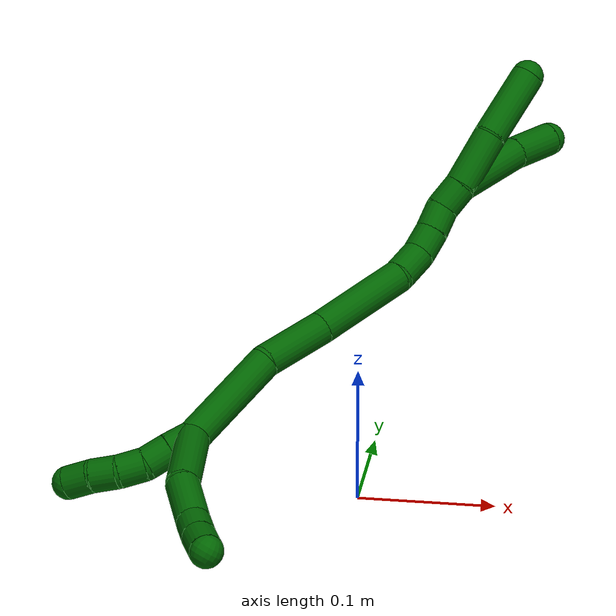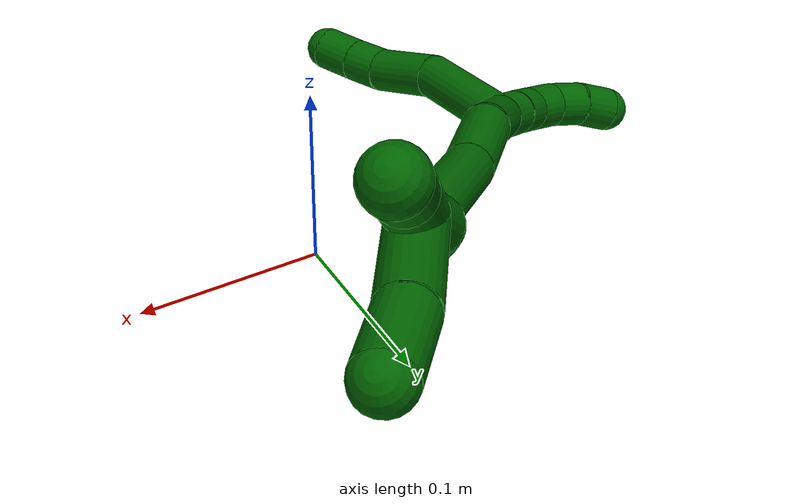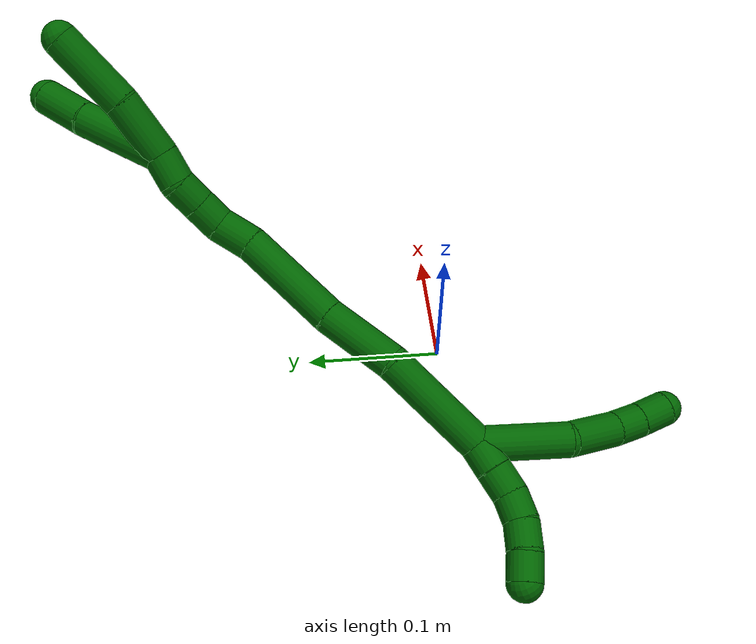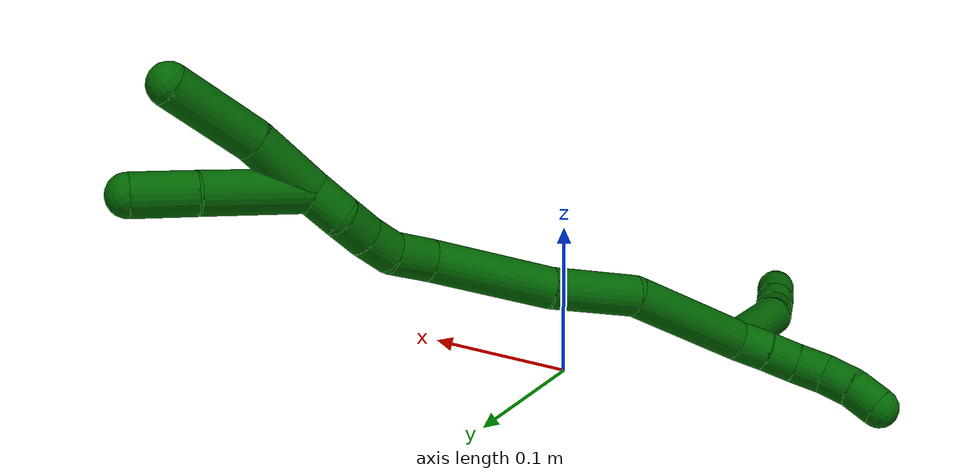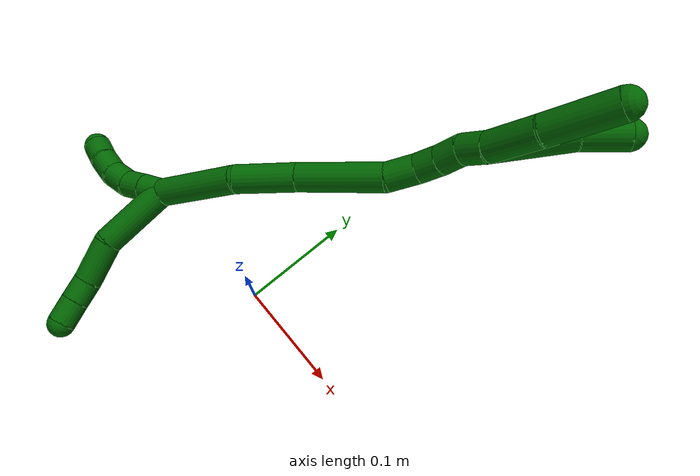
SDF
<sdf version="1.7">
 <world name="default">
  <model name="6">
   <static>0</static>
   <link name="6">
    <collision name="collision-cylinder-e_1_2_8">
     <pose>0.012098 -0.026693 -0.014662 2.07311 0.378128 0.625618</pose>
     <geometry><cylinder><radius>0.0125</radius><length>0.065539</length></cylinder></geometry>
     <surface>
      <friction><ode><mu>1.16</mu><mu2>1.16</mu2><slip1>0</slip1><slip2>0</slip2></ode></friction>
      <contact><ode><kp>1e+06</kp><kd>1</kd><max_vel>0</max_vel><min_depth>0.001</min_depth></ode></contact>
     </surface>
    </collision>
    <visual name="visual-cylinder-e_1_2_8">
     <pose>0.012098 -0.026693 -0.014662 2.07311 0.378128 0.625618</pose>
     <geometry><cylinder><radius>0.0125</radius><length>0.065539</length></cylinder></geometry>
     <material><ambient>0 0.392157 0.003922 1</ambient></material>
    </visual>
    <collision name="collision-cylinder-e_2_8_9">
     <pose>0.037451 -0.066093 -0.037593 2.14761 0.718446 1.21111</pose>
     <geometry><cylinder><radius>0.0125</radius><length>0.040275</length></cylinder></geometry>
     <surface>
      <friction><ode><mu>1.16</mu><mu2>1.16</mu2><slip1>0</slip1><slip2>0</slip2></ode></friction>
      <contact><ode><kp>1e+06</kp><kd>1</kd><max_vel>0</max_vel><min_depth>0.001</min_depth></ode></contact>
     </surface>
    </collision>
    <visual name="visual-cylinder-e_2_8_9">
     <pose>0.037451 -0.066093 -0.037593 2.14761 0.718446 1.21111</pose>
     <geometry><cylinder><radius>0.0125</radius><length>0.040275</length></cylinder></geometry>
     <material><ambient>0 0.392157 0.003922 1</ambient></material>
    </visual>
    <collision name="collision-cylinder-e_3_9_10">
     <pose>0.057049 -0.08692 -0.048666 1.90351 0.636014 0.865628</pose>
     <geometry><cylinder><radius>0.0125</radius><length>0.021358</length></cylinder></geometry>
     <surface>
      <friction><ode><mu>1.16</mu><mu2>1.16</mu2><slip1>0</slip1><slip2>0</slip2></ode></friction>
      <contact><ode><kp>1e+06</kp><kd>1</kd><max_vel>0</max_vel><min_depth>0.001</min_depth></ode></contact>
     </surface>
    </collision>
    <visual name="visual-cylinder-e_3_9_10">
     <pose>0.057049 -0.08692 -0.048666 1.90351 0.636014 0.865628</pose>
     <geometry><cylinder><radius>0.0125</radius><length>0.021358</length></cylinder></geometry>
     <material><ambient>0 0.392157 0.003922 1</ambient></material>
    </visual>
    <collision name="collision-cylinder-e_4_10_6">
     <pose>0.070257 -0.103909 -0.053591 1.80525 0.645272 0.801323</pose>
     <geometry><cylinder><radius>0.0125</radius><length>0.022827</length></cylinder></geometry>
     <surface>
      <friction><ode><mu>1.16</mu><mu2>1.16</mu2><slip1>0</slip1><slip2>0</slip2></ode></friction>
      <contact><ode><kp>1e+06</kp><kd>1</kd><max_vel>0</max_vel><min_depth>0.001</min_depth></ode></contact>
     </surface>
    </collision>
    <visual name="visual-cylinder-e_4_10_6">
     <pose>0.070257 -0.103909 -0.053591 1.80525 0.645272 0.801323</pose>
     <geometry><cylinder><radius>0.0125</radius><length>0.022827</length></cylinder></geometry>
     <material><ambient>0 0.392157 0.003922 1</ambient></material>
    </visual>
    <collision name="collision-cylinder-e_1_2_11">
     <pose>-0.004685 -0.003056 -0.00829 2.78844 -0.487545 -1.89695</pose>
     <geometry><cylinder><radius>0.0125</radius><length>0.02</length></cylinder></geometry>
     <surface>
      <friction><ode><mu>1.16</mu><mu2>1.16</mu2><slip1>0</slip1><slip2>0</slip2></ode></friction>
      <contact><ode><kp>1e+06</kp><kd>1</kd><max_vel>0</max_vel><min_depth>0.001</min_depth></ode></contact>
     </surface>
    </collision>
    <visual name="visual-cylinder-e_1_2_11">
     <pose>-0.004685 -0.003056 -0.00829 2.78844 -0.487545 -1.89695</pose>
     <geometry><cylinder><radius>0.0125</radius><length>0.02</length></cylinder></geometry>
     <material><ambient>0 0.392157 0.003922 1</ambient></material>
    </visual>
    <collision name="collision-cylinder-e_2_11_12">
     <pose>-0.013616 -0.009078 -0.025132 2.80767 -0.438641 -1.84685</pose>
     <geometry><cylinder><radius>0.0125</radius><length>0.02</length></cylinder></geometry>
     <surface>
      <friction><ode><mu>1.16</mu><mu2>1.16</mu2><slip1>0</slip1><slip2>0</slip2></ode></friction>
      <contact><ode><kp>1e+06</kp><kd>1</kd><max_vel>0</max_vel><min_depth>0.001</min_depth></ode></contact>
     </surface>
    </collision>
    <visual name="visual-cylinder-e_2_11_12">
     <pose>-0.013616 -0.009078 -0.025132 2.80767 -0.438641 -1.84685</pose>
     <geometry><cylinder><radius>0.0125</radius><length>0.02</length></cylinder></geometry>
     <material><ambient>0 0.392157 0.003922 1</ambient></material>
    </visual>
    <collision name="collision-cylinder-e_3_12_13">
     <pose>-0.024641 -0.013709 -0.040847 2.9134 -0.744778 -2.57088</pose>
     <geometry><cylinder><radius>0.0125</radius><length>0.02</length></cylinder></geometry>
     <surface>
      <friction><ode><mu>1.16</mu><mu2>1.16</mu2><slip1>0</slip1><slip2>0</slip2></ode></friction>
      <contact><ode><kp>1e+06</kp><kd>1</kd><max_vel>0</max_vel><min_depth>0.001</min_depth></ode></contact>
     </surface>
    </collision>
    <visual name="visual-cylinder-e_3_12_13">
     <pose>-0.024641 -0.013709 -0.040847 2.9134 -0.744778 -2.57088</pose>
     <geometry><cylinder><radius>0.0125</radius><length>0.02</length></cylinder></geometry>
     <material><ambient>0 0.392157 0.003922 1</ambient></material>
    </visual>
    <collision name="collision-cylinder-e_4_13_14">
     <pose>-0.039267 -0.014803 -0.054182 -3.0496 -0.902254 2.95214</pose>
     <geometry><cylinder><radius>0.0125</radius><length>0.02</length></cylinder></geometry>
     <surface>
      <friction><ode><mu>1.16</mu><mu2>1.16</mu2><slip1>0</slip1><slip2>0</slip2></ode></friction>
      <contact><ode><kp>1e+06</kp><kd>1</kd><max_vel>0</max_vel><min_depth>0.001</min_depth></ode></contact>
     </surface>
    </collision>
    <visual name="visual-cylinder-e_4_13_14">
     <pose>-0.039267 -0.014803 -0.054182 -3.0496 -0.902254 2.95214</pose>
     <geometry><cylinder><radius>0.0125</radius><length>0.02</length></cylinder></geometry>
     <material><ambient>0 0.392157 0.003922 1</ambient></material>
    </visual>
    <collision name="collision-cylinder-e_5_14_5">
     <pose>-0.054214 -0.012007 -0.067035 -2.81995 -0.789448 2.39891</pose>
     <geometry><cylinder><radius>0.0125</radius><length>0.02</length></cylinder></geometry>
     <surface>
      <friction><ode><mu>1.16</mu><mu2>1.16</mu2><slip1>0</slip1><slip2>0</slip2></ode></friction>
      <contact><ode><kp>1e+06</kp><kd>1</kd><max_vel>0</max_vel><min_depth>0.001</min_depth></ode></contact>
     </surface>
    </collision>
    <visual name="visual-cylinder-e_5_14_5">
     <pose>-0.054214 -0.012007 -0.067035 -2.81995 -0.789448 2.39891</pose>
     <geometry><cylinder><radius>0.0125</radius><length>0.02</length></cylinder></geometry>
     <material><ambient>0 0.392157 0.003922 1</ambient></material>
    </visual>
    <collision name="collision-cylinder-e_1_2_15">
     <pose>0.005074 0.016638 0.035994 -0.432982 0.127274 -0.028028</pose>
     <geometry><cylinder><radius>0.0125</radius><length>0.079954</length></cylinder></geometry>
     <surface>
      <friction><ode><mu>1.16</mu><mu2>1.16</mu2><slip1>0</slip1><slip2>0</slip2></ode></friction>
      <contact><ode><kp>1e+06</kp><kd>1</kd><max_vel>0</max_vel><min_depth>0.001</min_depth></ode></contact>
     </surface>
    </collision>
    <visual name="visual-cylinder-e_1_2_15">
     <pose>0.005074 0.016638 0.035994 -0.432982 0.127274 -0.028028</pose>
     <geometry><cylinder><radius>0.0125</radius><length>0.079954</length></cylinder></geometry>
     <material><ambient>0 0.392157 0.003922 1</ambient></material>
    </visual>
    <collision name="collision-cylinder-e_2_15_16">
     <pose>0.018137 0.049883 0.092267 -0.686204 0.295828 -0.106356</pose>
     <geometry><cylinder><radius>0.0125</radius><length>0.054803</length></cylinder></geometry>
     <surface>
      <friction><ode><mu>1.16</mu><mu2>1.16</mu2><slip1>0</slip1><slip2>0</slip2></ode></friction>
      <contact><ode><kp>1e+06</kp><kd>1</kd><max_vel>0</max_vel><min_depth>0.001</min_depth></ode></contact>
     </surface>
    </collision>
    <visual name="visual-cylinder-e_2_15_16">
     <pose>0.018137 0.049883 0.092267 -0.686204 0.295828 -0.106356</pose>
     <geometry><cylinder><radius>0.0125</radius><length>0.054803</length></cylinder></geometry>
     <material><ambient>0 0.392157 0.003922 1</ambient></material>
    </visual>
    <collision name="collision-cylinder-e_3_16_17">
     <pose>0.037602 0.085394 0.143227 -0.552179 0.308296 -0.08799</pose>
     <geometry><cylinder><radius>0.0125</radius><length>0.07564</length></cylinder></geometry>
     <surface>
      <friction><ode><mu>1.16</mu><mu2>1.16</mu2><slip1>0</slip1><slip2>0</slip2></ode></friction>
      <contact><ode><kp>1e+06</kp><kd>1</kd><max_vel>0</max_vel><min_depth>0.001</min_depth></ode></contact>
     </surface>
    </collision>
    <visual name="visual-cylinder-e_3_16_17">
     <pose>0.037602 0.085394 0.143227 -0.552179 0.308296 -0.08799</pose>
     <geometry><cylinder><radius>0.0125</radius><length>0.07564</length></cylinder></geometry>
     <material><ambient>0 0.392157 0.003922 1</ambient></material>
    </visual>
    <collision name="collision-cylinder-e_4_17_18">
     <pose>0.049684 0.112221 0.184464 -0.643965 0.045946 -0.015329</pose>
     <geometry><cylinder><radius>0.0125</radius><length>0.026424</length></cylinder></geometry>
     <surface>
      <friction><ode><mu>1.16</mu><mu2>1.16</mu2><slip1>0</slip1><slip2>0</slip2></ode></friction>
      <contact><ode><kp>1e+06</kp><kd>1</kd><max_vel>0</max_vel><min_depth>0.001</min_depth></ode></contact>
     </surface>
    </collision>
    <visual name="visual-cylinder-e_4_17_18">
     <pose>0.049684 0.112221 0.184464 -0.643965 0.045946 -0.015329</pose>
     <geometry><cylinder><radius>0.0125</radius><length>0.026424</length></cylinder></geometry>
     <material><ambient>0 0.392157 0.003922 1</ambient></material>
    </visual>
    <collision name="collision-cylinder-e_5_18_19">
     <pose>0.049636 0.123439 0.204746 -0.326562 -0.063738 0.010504</pose>
     <geometry><cylinder><radius>0.0125</radius><length>0.020583</length></cylinder></geometry>
     <surface>
      <friction><ode><mu>1.16</mu><mu2>1.16</mu2><slip1>0</slip1><slip2>0</slip2></ode></friction>
      <contact><ode><kp>1e+06</kp><kd>1</kd><max_vel>0</max_vel><min_depth>0.001</min_depth></ode></contact>
     </surface>
    </collision>
    <visual name="visual-cylinder-e_5_18_19">
     <pose>0.049636 0.123439 0.204746 -0.326562 -0.063738 0.010504</pose>
     <geometry><cylinder><radius>0.0125</radius><length>0.020583</length></cylinder></geometry>
     <material><ambient>0 0.392157 0.003922 1</ambient></material>
    </visual>
    <collision name="collision-cylinder-e_6_19_20">
     <pose>0.047423 0.129411 0.224135 -0.270344 -0.154114 0.021001</pose>
     <geometry><cylinder><radius>0.0125</radius><length>0.020291</length></cylinder></geometry>
     <surface>
      <friction><ode><mu>1.16</mu><mu2>1.16</mu2><slip1>0</slip1><slip2>0</slip2></ode></friction>
      <contact><ode><kp>1e+06</kp><kd>1</kd><max_vel>0</max_vel><min_depth>0.001</min_depth></ode></contact>
     </surface>
    </collision>
    <visual name="visual-cylinder-e_6_19_20">
     <pose>0.047423 0.129411 0.224135 -0.270344 -0.154114 0.021001</pose>
     <geometry><cylinder><radius>0.0125</radius><length>0.020291</length></cylinder></geometry>
     <material><ambient>0 0.392157 0.003922 1</ambient></material>
    </visual>
    <collision name="collision-cylinder-e_7_20_1">
     <pose>0.047492 0.133366 0.244755 -0.116031 0.146391 -0.008518</pose>
     <geometry><cylinder><radius>0.0125</radius><length>0.022304</length></cylinder></geometry>
     <surface>
      <friction><ode><mu>1.16</mu><mu2>1.16</mu2><slip1>0</slip1><slip2>0</slip2></ode></friction>
      <contact><ode><kp>1e+06</kp><kd>1</kd><max_vel>0</max_vel><min_depth>0.001</min_depth></ode></contact>
     </surface>
    </collision>
    <visual name="visual-cylinder-e_7_20_1">
     <pose>0.047492 0.133366 0.244755 -0.116031 0.146391 -0.008518</pose>
     <geometry><cylinder><radius>0.0125</radius><length>0.022304</length></cylinder></geometry>
     <material><ambient>0 0.392157 0.003922 1</ambient></material>
    </visual>
    <collision name="collision-cylinder-e_1_1_21">
     <pose>0.055614 0.157631 0.276638 -0.832344 0.205981 -0.091301</pose>
     <geometry><cylinder><radius>0.0125</radius><length>0.063512</length></cylinder></geometry>
     <surface>
      <friction><ode><mu>1.16</mu><mu2>1.16</mu2><slip1>0</slip1><slip2>0</slip2></ode></friction>
      <contact><ode><kp>1e+06</kp><kd>1</kd><max_vel>0</max_vel><min_depth>0.001</min_depth></ode></contact>
     </surface>
    </collision>
    <visual name="visual-cylinder-e_1_1_21">
     <pose>0.055614 0.157631 0.276638 -0.832344 0.205981 -0.091301</pose>
     <geometry><cylinder><radius>0.0125</radius><length>0.063512</length></cylinder></geometry>
     <material><ambient>0 0.392157 0.003922 1</ambient></material>
    </visual>
    <collision name="collision-cylinder-e_2_21_4">
     <pose>0.068354 0.193171 0.309235 -0.821711 0.349402 -0.153482</pose>
     <geometry><cylinder><radius>0.0125</radius><length>0.036488</length></cylinder></geometry>
     <surface>
      <friction><ode><mu>1.16</mu><mu2>1.16</mu2><slip1>0</slip1><slip2>0</slip2></ode></friction>
      <contact><ode><kp>1e+06</kp><kd>1</kd><max_vel>0</max_vel><min_depth>0.001</min_depth></ode></contact>
     </surface>
    </collision>
    <visual name="visual-cylinder-e_2_21_4">
     <pose>0.068354 0.193171 0.309235 -0.821711 0.349402 -0.153482</pose>
     <geometry><cylinder><radius>0.0125</radius><length>0.036488</length></cylinder></geometry>
     <material><ambient>0 0.392157 0.003922 1</ambient></material>
    </visual>
    <collision name="collision-cylinder-e_1_1_22">
     <pose>0.048545 0.138187 0.277255 -0.163055 -0.026269 0.002147</pose>
     <geometry><cylinder><radius>0.0125</radius><length>0.043677</length></cylinder></geometry>
     <surface>
      <friction><ode><mu>1.16</mu><mu2>1.16</mu2><slip1>0</slip1><slip2>0</slip2></ode></friction>
      <contact><ode><kp>1e+06</kp><kd>1</kd><max_vel>0</max_vel><min_depth>0.001</min_depth></ode></contact>
     </surface>
    </collision>
    <visual name="visual-cylinder-e_1_1_22">
     <pose>0.048545 0.138187 0.277255 -0.163055 -0.026269 0.002147</pose>
     <geometry><cylinder><radius>0.0125</radius><length>0.043677</length></cylinder></geometry>
     <material><ambient>0 0.392157 0.003922 1</ambient></material>
    </visual>
    <collision name="collision-cylinder-e_2_22_3">
     <pose>0.047219 0.150336 0.3256 -0.310651 -0.026714 0.004183</pose>
     <geometry><cylinder><radius>0.0125</radius><length>0.056323</length></cylinder></geometry>
     <surface>
      <friction><ode><mu>1.16</mu><mu2>1.16</mu2><slip1>0</slip1><slip2>0</slip2></ode></friction>
      <contact><ode><kp>1e+06</kp><kd>1</kd><max_vel>0</max_vel><min_depth>0.001</min_depth></ode></contact>
     </surface>
    </collision>
    <visual name="visual-cylinder-e_2_22_3">
     <pose>0.047219 0.150336 0.3256 -0.310651 -0.026714 0.004183</pose>
     <geometry><cylinder><radius>0.0125</radius><length>0.056323</length></cylinder></geometry>
     <material><ambient>0 0.392157 0.003922 1</ambient></material>
    </visual>
    <collision name="collision-sphere-3">
     <pose>0.046467 0.158942 0.352404 0 -0 0</pose>
     <geometry><sphere><radius>0.0125</radius></sphere></geometry>
     <surface>
      <friction><ode><mu>1.16</mu><mu2>1.16</mu2><slip1>0</slip1><slip2>0</slip2></ode></friction>
      <contact><ode><kp>1e+06</kp><kd>1</kd><max_vel>0</max_vel><min_depth>0.001</min_depth></ode></contact>
     </surface>
    </collision>
    <visual name="visual-sphere-3">
     <pose>0.046467 0.158942 0.352404 0 -0 0</pose>
     <geometry><sphere><radius>0.0125</radius></sphere></geometry>
     <material><ambient>0 0.392157 0.003922 1</ambient></material>
    </visual>
    <collision name="collision-sphere-22">
     <pose>0.047972 0.141731 0.298796 0 -0 0</pose>
     <geometry><sphere><radius>0.0125</radius></sphere></geometry>
     <surface>
      <friction><ode><mu>1.16</mu><mu2>1.16</mu2><slip1>0</slip1><slip2>0</slip2></ode></friction>
      <contact><ode><kp>1e+06</kp><kd>1</kd><max_vel>0</max_vel><min_depth>0.001</min_depth></ode></contact>
     </surface>
    </collision>
    <visual name="visual-sphere-22">
     <pose>0.047972 0.141731 0.298796 0 -0 0</pose>
     <geometry><sphere><radius>0.0125</radius></sphere></geometry>
     <material><ambient>0 0.392157 0.003922 1</ambient></material>
    </visual>
    <collision name="collision-sphere-4">
     <pose>0.0746 0.205724 0.320908 0 -0 0</pose>
     <geometry><sphere><radius>0.0125</radius></sphere></geometry>
     <surface>
      <friction><ode><mu>1.16</mu><mu2>1.16</mu2><slip1>0</slip1><slip2>0</slip2></ode></friction>
      <contact><ode><kp>1e+06</kp><kd>1</kd><max_vel>0</max_vel><min_depth>0.001</min_depth></ode></contact>
     </surface>
    </collision>
    <visual name="visual-sphere-4">
     <pose>0.0746 0.205724 0.320908 0 -0 0</pose>
     <geometry><sphere><radius>0.0125</radius></sphere></geometry>
     <material><ambient>0 0.392157 0.003922 1</ambient></material>
    </visual>
    <collision name="collision-sphere-21">
     <pose>0.062109 0.180619 0.297563 0 -0 0</pose>
     <geometry><sphere><radius>0.0125</radius></sphere></geometry>
     <surface>
      <friction><ode><mu>1.16</mu><mu2>1.16</mu2><slip1>0</slip1><slip2>0</slip2></ode></friction>
      <contact><ode><kp>1e+06</kp><kd>1</kd><max_vel>0</max_vel><min_depth>0.001</min_depth></ode></contact>
     </surface>
    </collision>
    <visual name="visual-sphere-21">
     <pose>0.062109 0.180619 0.297563 0 -0 0</pose>
     <geometry><sphere><radius>0.0125</radius></sphere></geometry>
     <material><ambient>0 0.392157 0.003922 1</ambient></material>
    </visual>
    <collision name="collision-sphere-1">
     <pose>0.049119 0.134643 0.255713 0 -0 0</pose>
     <geometry><sphere><radius>0.0125</radius></sphere></geometry>
     <surface>
      <friction><ode><mu>1.16</mu><mu2>1.16</mu2><slip1>0</slip1><slip2>0</slip2></ode></friction>
      <contact><ode><kp>1e+06</kp><kd>1</kd><max_vel>0</max_vel><min_depth>0.001</min_depth></ode></contact>
     </surface>
    </collision>
    <visual name="visual-sphere-1">
     <pose>0.049119 0.134643 0.255713 0 -0 0</pose>
     <geometry><sphere><radius>0.0125</radius></sphere></geometry>
     <material><ambient>0 0.392157 0.003922 1</ambient></material>
    </visual>
    <collision name="collision-sphere-11">
     <pose>-0.009369 -0.006111 -0.016579 0 -0 0</pose>
     <geometry><sphere><radius>0.0125</radius></sphere></geometry>
     <surface>
      <friction><ode><mu>1.16</mu><mu2>1.16</mu2><slip1>0</slip1><slip2>0</slip2></ode></friction>
      <contact><ode><kp>1e+06</kp><kd>1</kd><max_vel>0</max_vel><min_depth>0.001</min_depth></ode></contact>
     </surface>
    </collision>
    <visual name="visual-sphere-11">
     <pose>-0.009369 -0.006111 -0.016579 0 -0 0</pose>
     <geometry><sphere><radius>0.0125</radius></sphere></geometry>
     <material><ambient>0 0.392157 0.003922 1</ambient></material>
    </visual>
    <collision name="collision-sphere-6">
     <pose>0.077121 -0.112778 -0.055709 0 -0 0</pose>
     <geometry><sphere><radius>0.0125</radius></sphere></geometry>
     <surface>
      <friction><ode><mu>1.16</mu><mu2>1.16</mu2><slip1>0</slip1><slip2>0</slip2></ode></friction>
      <contact><ode><kp>1e+06</kp><kd>1</kd><max_vel>0</max_vel><min_depth>0.001</min_depth></ode></contact>
     </surface>
    </collision>
    <visual name="visual-sphere-6">
     <pose>0.077121 -0.112778 -0.055709 0 -0 0</pose>
     <geometry><sphere><radius>0.0125</radius></sphere></geometry>
     <material><ambient>0 0.392157 0.003922 1</ambient></material>
    </visual>
    <collision name="collision-sphere-10">
     <pose>0.063392 -0.09504 -0.051472 0 -0 0</pose>
     <geometry><sphere><radius>0.0125</radius></sphere></geometry>
     <surface>
      <friction><ode><mu>1.16</mu><mu2>1.16</mu2><slip1>0</slip1><slip2>0</slip2></ode></friction>
      <contact><ode><kp>1e+06</kp><kd>1</kd><max_vel>0</max_vel><min_depth>0.001</min_depth></ode></contact>
     </surface>
    </collision>
    <visual name="visual-sphere-10">
     <pose>0.063392 -0.09504 -0.051472 0 -0 0</pose>
     <geometry><sphere><radius>0.0125</radius></sphere></geometry>
     <material><ambient>0 0.392157 0.003922 1</ambient></material>
    </visual>
    <collision name="collision-sphere-9">
     <pose>0.050706 -0.0788 -0.04586 0 -0 0</pose>
     <geometry><sphere><radius>0.0125</radius></sphere></geometry>
     <surface>
      <friction><ode><mu>1.16</mu><mu2>1.16</mu2><slip1>0</slip1><slip2>0</slip2></ode></friction>
      <contact><ode><kp>1e+06</kp><kd>1</kd><max_vel>0</max_vel><min_depth>0.001</min_depth></ode></contact>
     </surface>
    </collision>
    <visual name="visual-sphere-9">
     <pose>0.050706 -0.0788 -0.04586 0 -0 0</pose>
     <geometry><sphere><radius>0.0125</radius></sphere></geometry>
     <material><ambient>0 0.392157 0.003922 1</ambient></material>
    </visual>
    <collision name="collision-sphere-2">
     <geometry><sphere><radius>0.0125</radius></sphere></geometry>
     <surface>
      <friction><ode><mu>1.16</mu><mu2>1.16</mu2><slip1>0</slip1><slip2>0</slip2></ode></friction>
      <contact><ode><kp>1e+06</kp><kd>1</kd><max_vel>0</max_vel><min_depth>0.001</min_depth></ode></contact>
     </surface>
    </collision>
    <visual name="visual-sphere-2">
     <geometry><sphere><radius>0.0125</radius></sphere></geometry>
     <material><ambient>0 0.392157 0.003922 1</ambient></material>
    </visual>
    <collision name="collision-sphere-19">
     <pose>0.04898 0.126734 0.214474 0 -0 0</pose>
     <geometry><sphere><radius>0.0125</radius></sphere></geometry>
     <surface>
      <friction><ode><mu>1.16</mu><mu2>1.16</mu2><slip1>0</slip1><slip2>0</slip2></ode></friction>
      <contact><ode><kp>1e+06</kp><kd>1</kd><max_vel>0</max_vel><min_depth>0.001</min_depth></ode></contact>
     </surface>
    </collision>
    <visual name="visual-sphere-19">
     <pose>0.04898 0.126734 0.214474 0 -0 0</pose>
     <geometry><sphere><radius>0.0125</radius></sphere></geometry>
     <material><ambient>0 0.392157 0.003922 1</ambient></material>
    </visual>
    <collision name="collision-sphere-8">
     <pose>0.024196 -0.053385 -0.029325 0 -0 0</pose>
     <geometry><sphere><radius>0.0125</radius></sphere></geometry>
     <surface>
      <friction><ode><mu>1.16</mu><mu2>1.16</mu2><slip1>0</slip1><slip2>0</slip2></ode></friction>
      <contact><ode><kp>1e+06</kp><kd>1</kd><max_vel>0</max_vel><min_depth>0.001</min_depth></ode></contact>
     </surface>
    </collision>
    <visual name="visual-sphere-8">
     <pose>0.024196 -0.053385 -0.029325 0 -0 0</pose>
     <geometry><sphere><radius>0.0125</radius></sphere></geometry>
     <material><ambient>0 0.392157 0.003922 1</ambient></material>
    </visual>
    <collision name="collision-sphere-12">
     <pose>-0.017863 -0.012046 -0.033686 0 -0 0</pose>
     <geometry><sphere><radius>0.0125</radius></sphere></geometry>
     <surface>
      <friction><ode><mu>1.16</mu><mu2>1.16</mu2><slip1>0</slip1><slip2>0</slip2></ode></friction>
      <contact><ode><kp>1e+06</kp><kd>1</kd><max_vel>0</max_vel><min_depth>0.001</min_depth></ode></contact>
     </surface>
    </collision>
    <visual name="visual-sphere-12">
     <pose>-0.017863 -0.012046 -0.033686 0 -0 0</pose>
     <geometry><sphere><radius>0.0125</radius></sphere></geometry>
     <material><ambient>0 0.392157 0.003922 1</ambient></material>
    </visual>
    <collision name="collision-sphere-13">
     <pose>-0.03142 -0.015372 -0.048009 0 -0 0</pose>
     <geometry><sphere><radius>0.0125</radius></sphere></geometry>
     <surface>
      <friction><ode><mu>1.16</mu><mu2>1.16</mu2><slip1>0</slip1><slip2>0</slip2></ode></friction>
      <contact><ode><kp>1e+06</kp><kd>1</kd><max_vel>0</max_vel><min_depth>0.001</min_depth></ode></contact>
     </surface>
    </collision>
    <visual name="visual-sphere-13">
     <pose>-0.03142 -0.015372 -0.048009 0 -0 0</pose>
     <geometry><sphere><radius>0.0125</radius></sphere></geometry>
     <material><ambient>0 0.392157 0.003922 1</ambient></material>
    </visual>
    <collision name="collision-sphere-14">
     <pose>-0.047114 -0.014233 -0.060354 0 -0 0</pose>
     <geometry><sphere><radius>0.0125</radius></sphere></geometry>
     <surface>
      <friction><ode><mu>1.16</mu><mu2>1.16</mu2><slip1>0</slip1><slip2>0</slip2></ode></friction>
      <contact><ode><kp>1e+06</kp><kd>1</kd><max_vel>0</max_vel><min_depth>0.001</min_depth></ode></contact>
     </surface>
    </collision>
    <visual name="visual-sphere-14">
     <pose>-0.047114 -0.014233 -0.060354 0 -0 0</pose>
     <geometry><sphere><radius>0.0125</radius></sphere></geometry>
     <material><ambient>0 0.392157 0.003922 1</ambient></material>
    </visual>
    <collision name="collision-sphere-5">
     <pose>-0.061313 -0.009781 -0.073716 0 -0 0</pose>
     <geometry><sphere><radius>0.0125</radius></sphere></geometry>
     <surface>
      <friction><ode><mu>1.16</mu><mu2>1.16</mu2><slip1>0</slip1><slip2>0</slip2></ode></friction>
      <contact><ode><kp>1e+06</kp><kd>1</kd><max_vel>0</max_vel><min_depth>0.001</min_depth></ode></contact>
     </surface>
    </collision>
    <visual name="visual-sphere-5">
     <pose>-0.061313 -0.009781 -0.073716 0 -0 0</pose>
     <geometry><sphere><radius>0.0125</radius></sphere></geometry>
     <material><ambient>0 0.392157 0.003922 1</ambient></material>
    </visual>
    <collision name="collision-sphere-15">
     <pose>0.010149 0.033276 0.071989 0 -0 0</pose>
     <geometry><sphere><radius>0.0125</radius></sphere></geometry>
     <surface>
      <friction><ode><mu>1.16</mu><mu2>1.16</mu2><slip1>0</slip1><slip2>0</slip2></ode></friction>
      <contact><ode><kp>1e+06</kp><kd>1</kd><max_vel>0</max_vel><min_depth>0.001</min_depth></ode></contact>
     </surface>
    </collision>
    <visual name="visual-sphere-15">
     <pose>0.010149 0.033276 0.071989 0 -0 0</pose>
     <geometry><sphere><radius>0.0125</radius></sphere></geometry>
     <material><ambient>0 0.392157 0.003922 1</ambient></material>
    </visual>
    <collision name="collision-sphere-16">
     <pose>0.026126 0.066491 0.112546 0 -0 0</pose>
     <geometry><sphere><radius>0.0125</radius></sphere></geometry>
     <surface>
      <friction><ode><mu>1.16</mu><mu2>1.16</mu2><slip1>0</slip1><slip2>0</slip2></ode></friction>
      <contact><ode><kp>1e+06</kp><kd>1</kd><max_vel>0</max_vel><min_depth>0.001</min_depth></ode></contact>
     </surface>
    </collision>
    <visual name="visual-sphere-16">
     <pose>0.026126 0.066491 0.112546 0 -0 0</pose>
     <geometry><sphere><radius>0.0125</radius></sphere></geometry>
     <material><ambient>0 0.392157 0.003922 1</ambient></material>
    </visual>
    <collision name="collision-sphere-17">
     <pose>0.049078 0.104297 0.173909 0 -0 0</pose>
     <geometry><sphere><radius>0.0125</radius></sphere></geometry>
     <surface>
      <friction><ode><mu>1.16</mu><mu2>1.16</mu2><slip1>0</slip1><slip2>0</slip2></ode></friction>
      <contact><ode><kp>1e+06</kp><kd>1</kd><max_vel>0</max_vel><min_depth>0.001</min_depth></ode></contact>
     </surface>
    </collision>
    <visual name="visual-sphere-17">
     <pose>0.049078 0.104297 0.173909 0 -0 0</pose>
     <geometry><sphere><radius>0.0125</radius></sphere></geometry>
     <material><ambient>0 0.392157 0.003922 1</ambient></material>
    </visual>
    <collision name="collision-sphere-18">
     <pose>0.050291 0.120145 0.195018 0 -0 0</pose>
     <geometry><sphere><radius>0.0125</radius></sphere></geometry>
     <surface>
      <friction><ode><mu>1.16</mu><mu2>1.16</mu2><slip1>0</slip1><slip2>0</slip2></ode></friction>
      <contact><ode><kp>1e+06</kp><kd>1</kd><max_vel>0</max_vel><min_depth>0.001</min_depth></ode></contact>
     </surface>
    </collision>
    <visual name="visual-sphere-18">
     <pose>0.050291 0.120145 0.195018 0 -0 0</pose>
     <geometry><sphere><radius>0.0125</radius></sphere></geometry>
     <material><ambient>0 0.392157 0.003922 1</ambient></material>
    </visual>
    <collision name="collision-sphere-20">
     <pose>0.045865 0.132089 0.233796 0 -0 0</pose>
     <geometry><sphere><radius>0.0125</radius></sphere></geometry>
     <surface>
      <friction><ode><mu>1.16</mu><mu2>1.16</mu2><slip1>0</slip1><slip2>0</slip2></ode></friction>
      <contact><ode><kp>1e+06</kp><kd>1</kd><max_vel>0</max_vel><min_depth>0.001</min_depth></ode></contact>
     </surface>
    </collision>
    <visual name="visual-sphere-20">
     <pose>0.045865 0.132089 0.233796 0 -0 0</pose>
     <geometry><sphere><radius>0.0125</radius></sphere></geometry>
     <material><ambient>0 0.392157 0.003922 1</ambient></material>
    </visual>
    <inertial>
     <pose>0.029068 0.058 0.118024 0 -0 0</pose>
     <mass>0.75</mass>
     <inertia>
      <ixx>0.000196</ixx>
      <ixy>0</ixy>
      <ixz>0</ixz>
      <iyy>0.000161</iyy>
      <iyz>0</iyz>
      <izz>-6.7e-05</izz>
     </inertia>
    </inertial>
   </link>
   <pose>-0.118991 -0.008339 0.044719 -0.524191 0.364032 -0.309909</pose>
  </model>
 </world>
</sdf>
